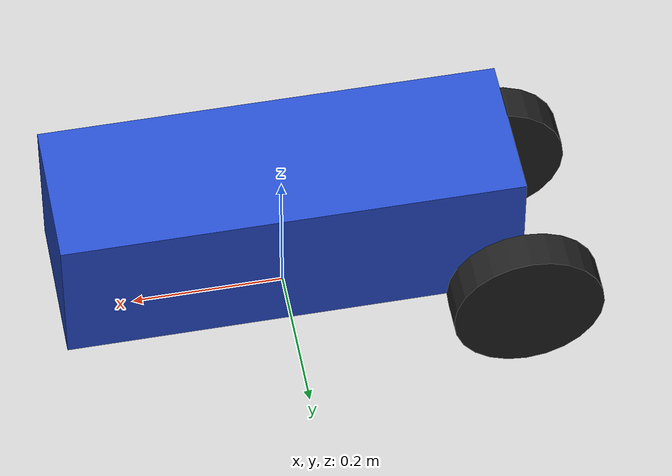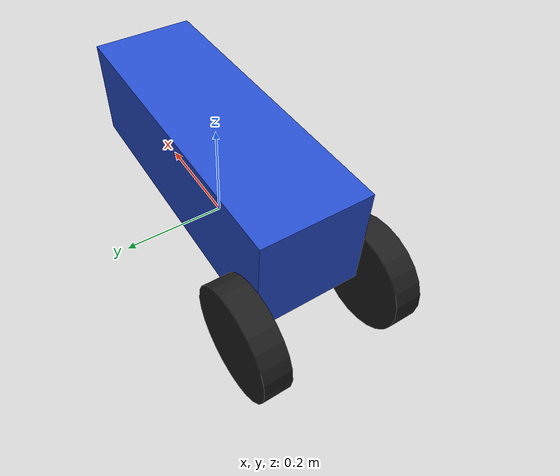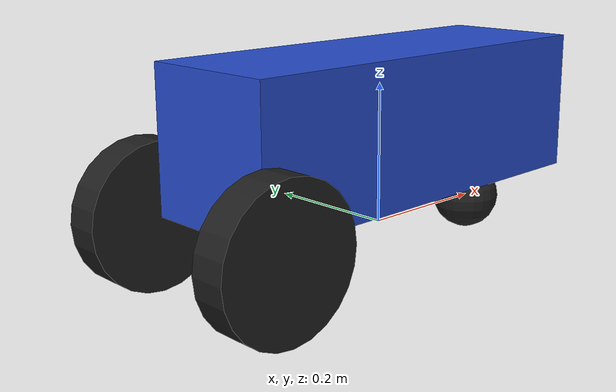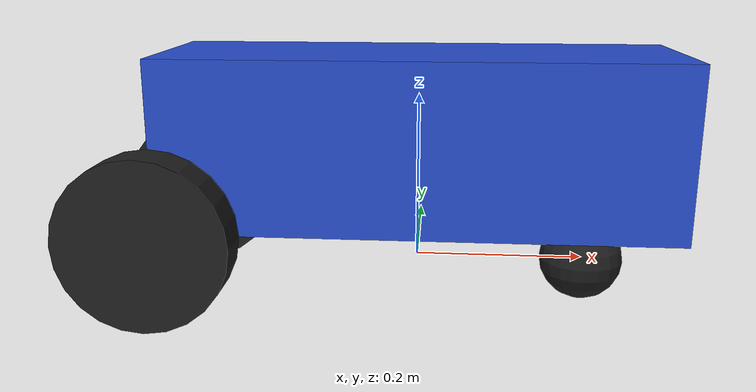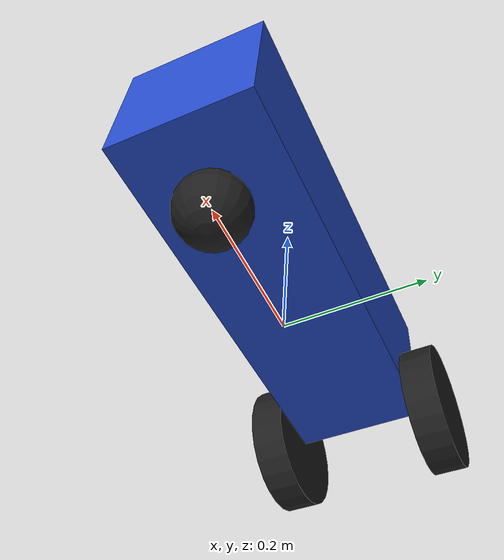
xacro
<?xml version="1.0"?>

<robot xmlns:xacro="http://www.ros.org/wiki/xacro">

    <xacro:property name="base_length" value="0.6" />
    <xacro:property name="base_width" value="0.2" />
    <xacro:property name="base_height" value="0.2" />
    <xacro:property name="wheel_radius" value="0.1" />
    <xacro:property name="wheel_length" value="0.05" />

    <link name="base_footprint" />

    <link name="base_link">
        <visual>
            <geometry>
                <box size="${base_length} ${base_width} ${base_height}" />
            </geometry>
            <origin xyz="0 0 ${base_height/2.0}" rpy="0 0 0" />
            <material name="blue" />
        </visual>

        <collision>
            <geometry>
                <box size="${base_length} ${base_width} ${base_height}" />
            </geometry>
            <origin xyz="0 0 ${base_height/2.0}" rpy="0 0 0" />
        </collision>

        <xacro:box_inertial m="5.0" l="${base_length}" w="${base_width}" h="${base_height}" xyz="0 0 ${base_height/2.0}" rpy="0 0 0" />
    </link>

    <xacro:macro name="wheel_link" params="prefix">
        <link name="${prefix}_wheel_link">
            <visual>
                <geometry>
                    <cylinder radius="${wheel_radius}" length="${wheel_length}" />
                </geometry>
                <origin xyz="0 0 0" rpy="${pi/2.0} 0 0" />
                <material name="black" />
            </visual>

            <collision>
                <geometry>
                    <cylinder radius="${wheel_radius}" length="${wheel_length}" />
                </geometry>
                <origin xyz="0 0 0" rpy="${pi/2.0} 0 0" />
            </collision>

            <xacro:cylinder_inertial m="0.5" r="${wheel_radius}" h="${wheel_length}" xyz="0 0 0" rpy="${pi/2.0} 0 0" />
        </link>
    </xacro:macro>

    <xacro:wheel_link prefix="right" />
    <xacro:wheel_link prefix="left" />

    <link name="caster_wheel_link">
        <visual>
            <geometry>
                <sphere radius="${wheel_radius/2.0}" />
            </geometry>
            <origin xyz="0 0 0" rpy="0 0 0" />
            <material name="black" />
        </visual>

        <collision>
            <geometry>
                <sphere radius="${wheel_radius/2.0}" />
            </geometry>
            <origin xyz="0 0 0" rpy="0 0 0" />
        </collision>

        <xacro:sphere_inertial m="0.5" r="${wheel_radius/2.0}" xyz="0 0 0" rpy="0 0 0" />
    </link>

    <joint name="base_joint" type="fixed">
        <parent link="base_footprint" />
        <child link="base_link" />
        <origin xyz="0 0 ${wheel_radius/2.0}" rpy="0 0 0" />
    </joint>

    <joint name="base_right_wheel_link" type="continuous">
        <parent link="base_link" />
        <child link="right_wheel_link" />
        <origin xyz="${-base_length/2.0} ${-(base_width + wheel_length)/2.0} 0" rpy="0 0 0" />
        <axis xyz="0 1 0" />
    </joint>

    <joint name="base_left_wheel_link" type="continuous">
        <parent link="base_link" />
        <child link="left_wheel_link" />
        <origin xyz="${-base_length/2.0} ${(base_width + wheel_length)/2.0} 0" rpy="0 0 0" />
        <axis xyz="0 1 0" />
    </joint>

    <joint name="base_caster_wheel" type="fixed">
        <parent link="base_link" />
        <child link="caster_wheel_link" />
        <origin xyz="${base_length/3.0} 0 ${-wheel_radius/2.0}" rpy="0 0 0" />
    </joint>

</robot>
